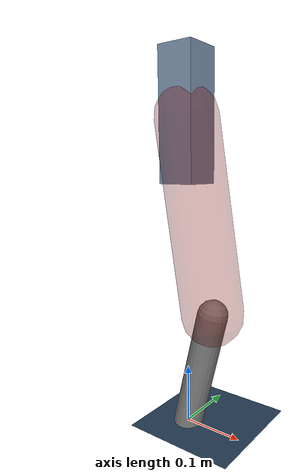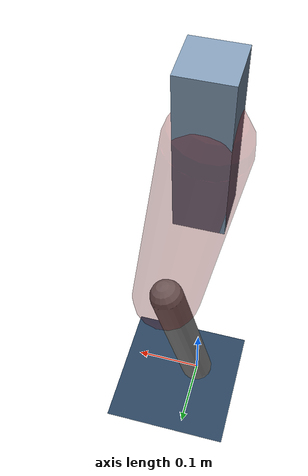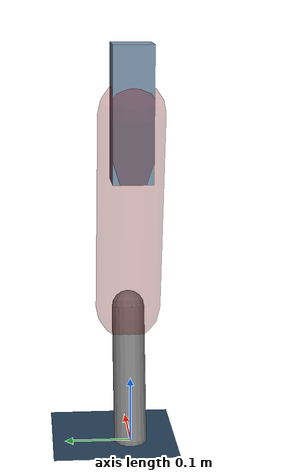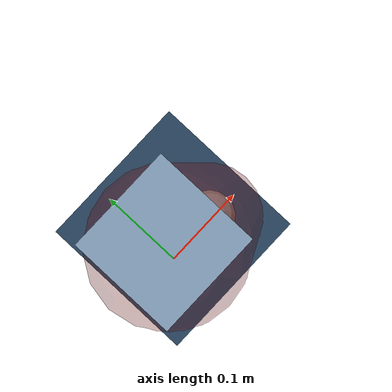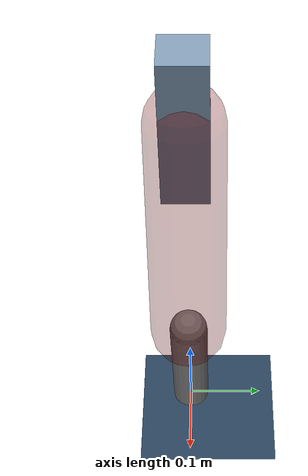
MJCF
<mujoco model="Hopper2D">
	<compiler inertiafromgeom="true" angle="radian" />
	<option timestep="0.001" integrator="implicit" cone="elliptic" solver="Newton" tolerance="1e-10" />

	<default>
		<geom contype="1" conaffinity="1" condim="3" friction="2 0.005 0.0001" solref="0.005 1" />
		<joint limited="true" damping="0.1" />
	</default>

	<asset>
		<texture name="skybox" type="skybox" builtin="gradient" rgb1=".4 .6 .8" rgb2="0 0 0" width="800" height="800" />
		<texture name="grid" type="2d" builtin="checker" rgb1=".1 .2 .3" rgb2=".2 .3 .4" width="300" height="300" mark="edge" markrgb=".2 .3 .4" />
		<material name="ground" texture="grid" texrepeat="1 1" texuniform="true" reflectance="0.1" />
		<material name="leg" rgba="0.5 0.6 0.7 1" />
	</asset>

	<worldbody>

		<geom name="floor" type="plane" size="5 5 0.25" material="ground" />

		<light directional="false" diffuse="0.8 0.8 0.8" specular="0.3 0.3 0.3" pos="0 0 2" dir="0 0 -1" />
		<light mode="targetbodycom" target="base" directional="false" diffuse="0.8 0.8 0.8" specular="0.3 0.3 0.3" pos="0 0 2" dir="0 0 -1" />

		<camera name="fixed" pos="0 -2 1" xyaxes="1 0 0 0 0 1" />
		<camera name="tracking" mode="trackcom" pos="0 -3 1" />

		<body name="root" pos="0 0 0.5065204533014088">
			<joint name="slide_x" type="slide" axis="1 0 0" range="-100 100" />
			<joint name="slide_z" type="slide" axis="0 0 1" range="0 10" />

			<body name="base" pos="0 0 0">
				<geom name="torso" type="box" size="0.03 0.03 0.1" mass="2.866" material="leg" />

				<body name="link1" pos="0 0 0" euler="0 1.4099592220747987 0">
					<joint type="hinge" axis="0 -1 0" pos="0 0 0" name="hinge1" limited="true" range="-3.14 3.14" stiffness="0" damping="0.1" />
					<geom name="thigh" type="capsule" fromto="0 0 0 0.3093118509243926 0 0" size="0.05" rgba="0.5 0 0 0.3" mass="1.01404199749586" />

					<body name="link2" pos="0.3093118509243926 0 0" euler="0 0.4022314051064676 0">
						<joint type="hinge" axis="0 -1 0" pos="0 0 0" name="hinge2" limited="true" range="-3.14 3.14" stiffness="0" damping="0.1" />
						<geom name="shank" type="capsule" fromto="0 0 0 0.20720860237701622 0 0" size="0.025" mass="0.40696688190161295" />

					</body>
				</body>
			</body>
		</body>
	</worldbody>

	<actuator>
		<motor name="torque1" joint="hinge1" ctrlrange="-87.5254210903315 87.5254210903315" ctrllimited="true" gear="1" />
		<motor name="torque2" joint="hinge2" ctrlrange="-157.56289381268914 157.56289381268914" ctrllimited="true" gear="1" />
	</actuator>
</mujoco>
